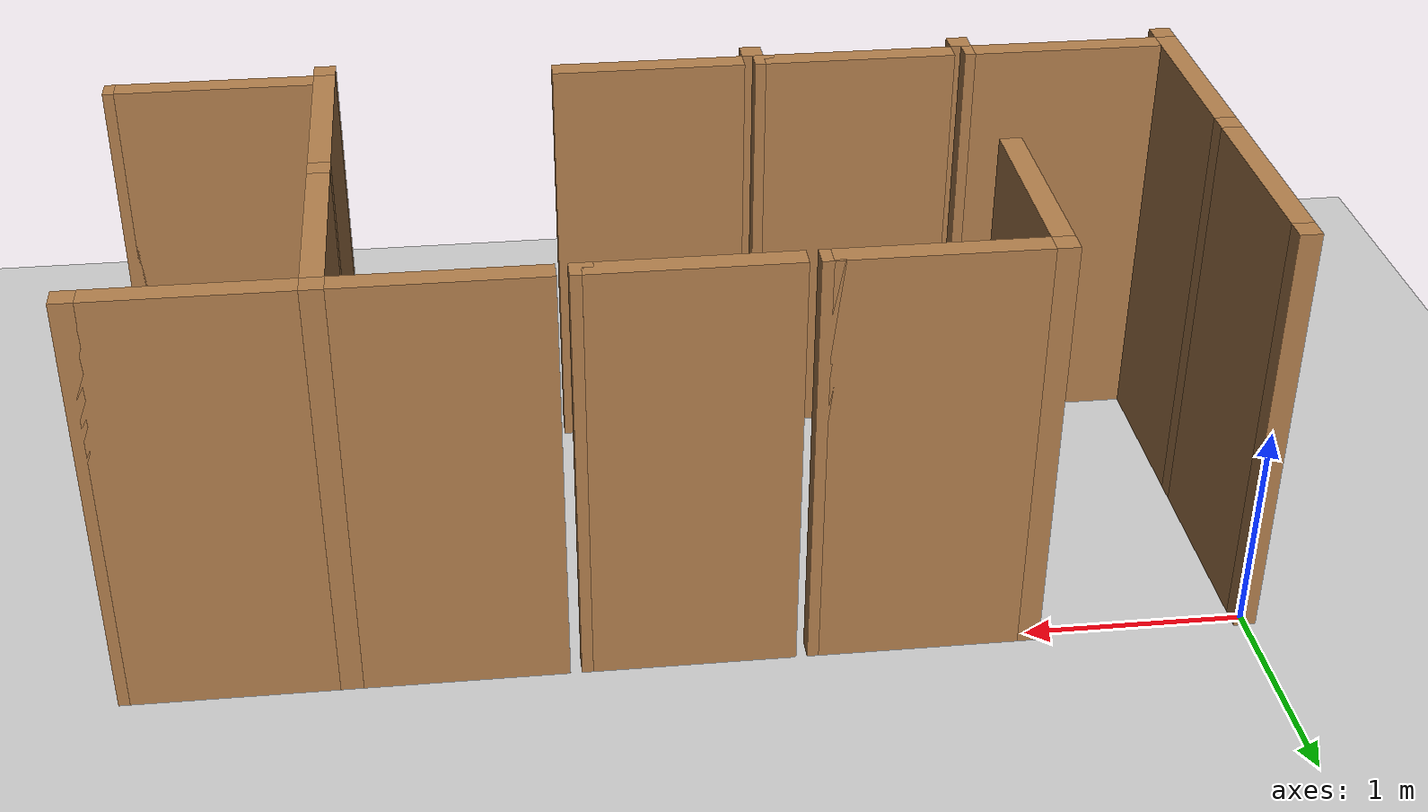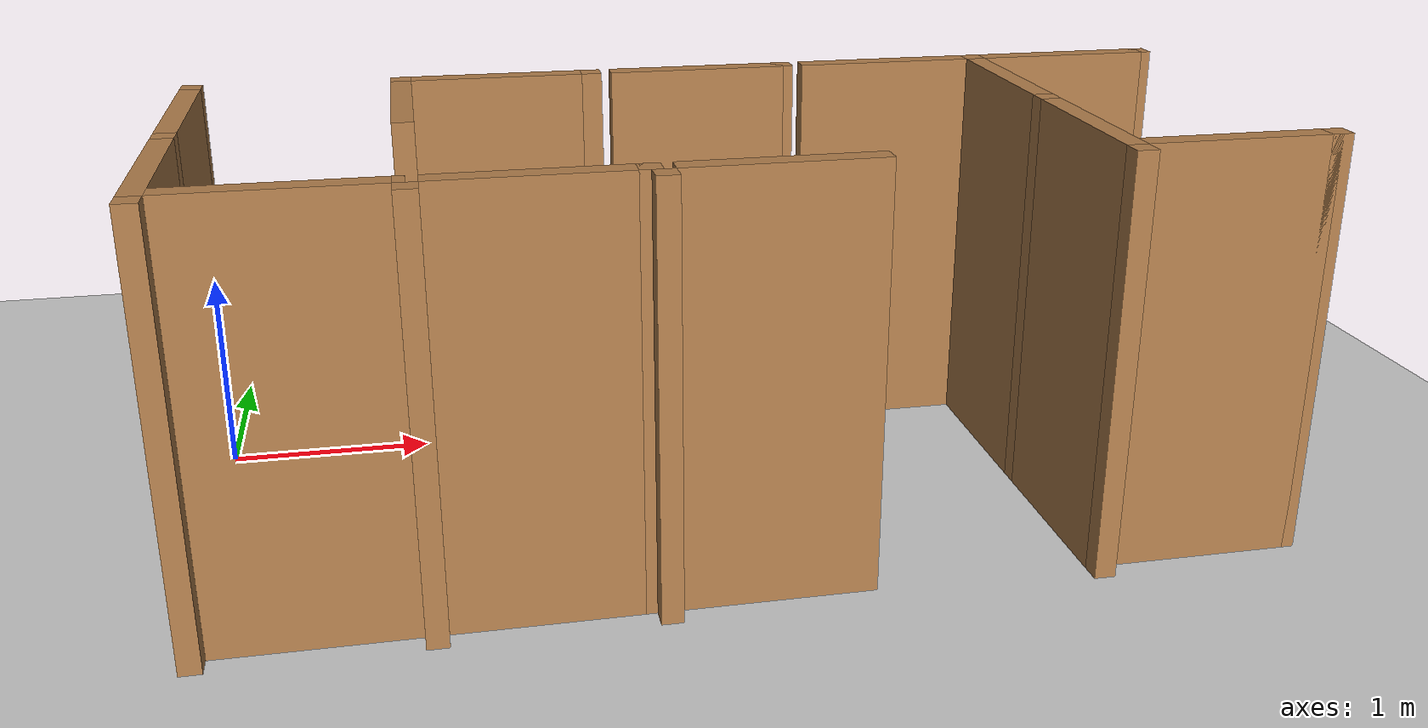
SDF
<sdf version="1.6">
 <world name="default">
  <include><uri>model://sun</uri></include>
  <model name="ground_plane">
   <static>true</static>
   <link name="link">
    <collision name="collision"><geometry><plane><size>12.0 12.0</size></plane></geometry></collision>
    <visual name="visual">
     <cast_shadows>false</cast_shadows>
     <geometry><plane><size>12.0 12.0</size></plane></geometry>
     <material>
      <script><uri>file://media/materials/scripts/gazebo.material</uri><name>Gazebo/Grey</name></script>
     </material>
    </visual>
   </link>
   <pose>6.0 -6.0 0 0 0 0</pose>
  </model>
  <model name="vwall_0_0">
   <pose>0.0 -0.5 1.0 0 0 0</pose>
   <link name="link">
    <collision name="collision"><geometry><box><size>0.1 0.9 2</size></box></geometry></collision>
    <visual name="visual">
     <geometry><box><size>0.1 0.9 2</size></box></geometry>
     <material>
      <script><uri>file://media/materials/scripts/gazebo.material</uri><name>Gazebo/Wood</name></script>
     </material>
    </visual>
   </link>
  </model>
  <model name="joint_0.0_0.0">
   <pose>0.0 0.0 1.0 0 0 0</pose>
   <link name="link">
    <collision name="collision"><geometry><box><size>0.1 0.1 2</size></box></geometry></collision>
    <visual name="visual">
     <geometry><box><size>0.1 0.1 2</size></box></geometry>
     <material>
      <script><uri>file://media/materials/scripts/gazebo.material</uri><name>Gazebo/Wood</name></script>
     </material>
    </visual>
   </link>
  </model>
  <model name="vwall_0_1">
   <pose>1.0 -0.5 1.0 0 0 0</pose>
   <link name="link">
    <collision name="collision"><geometry><box><size>0.1 0.9 2</size></box></geometry></collision>
    <visual name="visual">
     <geometry><box><size>0.1 0.9 2</size></box></geometry>
     <material>
      <script><uri>file://media/materials/scripts/gazebo.material</uri><name>Gazebo/Wood</name></script>
     </material>
    </visual>
   </link>
  </model>
  <model name="joint_1.0_0.0">
   <pose>1.0 0.0 1.0 0 0 0</pose>
   <link name="link">
    <collision name="collision"><geometry><box><size>0.1 0.1 2</size></box></geometry></collision>
    <visual name="visual">
     <geometry><box><size>0.1 0.1 2</size></box></geometry>
     <material>
      <script><uri>file://media/materials/scripts/gazebo.material</uri><name>Gazebo/Wood</name></script>
     </material>
    </visual>
   </link>
  </model>
  <model name="vwall_0_4">
   <pose>4.0 -0.5 1.0 0 0 0</pose>
   <link name="link">
    <collision name="collision"><geometry><box><size>0.1 0.9 2</size></box></geometry></collision>
    <visual name="visual">
     <geometry><box><size>0.1 0.9 2</size></box></geometry>
     <material>
      <script><uri>file://media/materials/scripts/gazebo.material</uri><name>Gazebo/Wood</name></script>
     </material>
    </visual>
   </link>
  </model>
  <model name="joint_4.0_0.0">
   <pose>4.0 0.0 1.0 0 0 0</pose>
   <link name="link">
    <collision name="collision"><geometry><box><size>0.1 0.1 2</size></box></geometry></collision>
    <visual name="visual">
     <geometry><box><size>0.1 0.1 2</size></box></geometry>
     <material>
      <script><uri>file://media/materials/scripts/gazebo.material</uri><name>Gazebo/Wood</name></script>
     </material>
    </visual>
   </link>
  </model>
  <model name="vwall_1_0">
   <pose>0.0 -1.5 1.0 0 0 0</pose>
   <link name="link">
    <collision name="collision"><geometry><box><size>0.1 0.9 2</size></box></geometry></collision>
    <visual name="visual">
     <geometry><box><size>0.1 0.9 2</size></box></geometry>
     <material>
      <script><uri>file://media/materials/scripts/gazebo.material</uri><name>Gazebo/Wood</name></script>
     </material>
    </visual>
   </link>
  </model>
  <model name="joint_0.0_-1.0">
   <pose>0.0 -1.0 1.0 0 0 0</pose>
   <link name="link">
    <collision name="collision"><geometry><box><size>0.1 0.1 2</size></box></geometry></collision>
    <visual name="visual">
     <geometry><box><size>0.1 0.1 2</size></box></geometry>
     <material>
      <script><uri>file://media/materials/scripts/gazebo.material</uri><name>Gazebo/Wood</name></script>
     </material>
    </visual>
   </link>
  </model>
  <model name="vwall_1_4">
   <pose>4.0 -1.5 1.0 0 0 0</pose>
   <link name="link">
    <collision name="collision"><geometry><box><size>0.1 0.9 2</size></box></geometry></collision>
    <visual name="visual">
     <geometry><box><size>0.1 0.9 2</size></box></geometry>
     <material>
      <script><uri>file://media/materials/scripts/gazebo.material</uri><name>Gazebo/Wood</name></script>
     </material>
    </visual>
   </link>
  </model>
  <model name="joint_4.0_-1.0">
   <pose>4.0 -1.0 1.0 0 0 0</pose>
   <link name="link">
    <collision name="collision"><geometry><box><size>0.1 0.1 2</size></box></geometry></collision>
    <visual name="visual">
     <geometry><box><size>0.1 0.1 2</size></box></geometry>
     <material>
      <script><uri>file://media/materials/scripts/gazebo.material</uri><name>Gazebo/Wood</name></script>
     </material>
    </visual>
   </link>
  </model>
  <model name="joint_0.0_-2.0">
   <pose>0.0 -2.0 1.0 0 0 0</pose>
   <link name="link">
    <collision name="collision"><geometry><box><size>0.1 0.1 2</size></box></geometry></collision>
    <visual name="visual">
     <geometry><box><size>0.1 0.1 2</size></box></geometry>
     <material>
      <script><uri>file://media/materials/scripts/gazebo.material</uri><name>Gazebo/Wood</name></script>
     </material>
    </visual>
   </link>
  </model>
  <model name="joint_1.0_-2.0">
   <pose>1.0 -2.0 1.0 0 0 0</pose>
   <link name="link">
    <collision name="collision"><geometry><box><size>0.1 0.1 2</size></box></geometry></collision>
    <visual name="visual">
     <geometry><box><size>0.1 0.1 2</size></box></geometry>
     <material>
      <script><uri>file://media/materials/scripts/gazebo.material</uri><name>Gazebo/Wood</name></script>
     </material>
    </visual>
   </link>
  </model>
  <model name="joint_2.0_-2.0">
   <pose>2.0 -2.0 1.0 0 0 0</pose>
   <link name="link">
    <collision name="collision"><geometry><box><size>0.1 0.1 2</size></box></geometry></collision>
    <visual name="visual">
     <geometry><box><size>0.1 0.1 2</size></box></geometry>
     <material>
      <script><uri>file://media/materials/scripts/gazebo.material</uri><name>Gazebo/Wood</name></script>
     </material>
    </visual>
   </link>
  </model>
  <model name="joint_4.0_-2.0">
   <pose>4.0 -2.0 1.0 0 0 0</pose>
   <link name="link">
    <collision name="collision"><geometry><box><size>0.1 0.1 2</size></box></geometry></collision>
    <visual name="visual">
     <geometry><box><size>0.1 0.1 2</size></box></geometry>
     <material>
      <script><uri>file://media/materials/scripts/gazebo.material</uri><name>Gazebo/Wood</name></script>
     </material>
    </visual>
   </link>
  </model>
  <model name="hwall_0_1">
   <pose>1.5 0.0 1.0 0 0 0</pose>
   <link name="link">
    <collision name="collision"><geometry><box><size>0.9 0.1 2</size></box></geometry></collision>
    <visual name="visual">
     <geometry><box><size>0.9 0.1 2</size></box></geometry>
     <material>
      <script><uri>file://media/materials/scripts/gazebo.material</uri><name>Gazebo/Wood</name></script>
     </material>
    </visual>
   </link>
  </model>
  <model name="joint_1.95_0.0">
   <pose>1.95 0.0 1.0 0 0 0</pose>
   <link name="link">
    <collision name="collision"><geometry><box><size>0.1 0.1 2</size></box></geometry></collision>
    <visual name="visual">
     <geometry><box><size>0.1 0.1 2</size></box></geometry>
     <material>
      <script><uri>file://media/materials/scripts/gazebo.material</uri><name>Gazebo/Wood</name></script>
     </material>
    </visual>
   </link>
  </model>
  <model name="hwall_0_2">
   <pose>2.5 0.0 1.0 0 0 0</pose>
   <link name="link">
    <collision name="collision"><geometry><box><size>0.9 0.1 2</size></box></geometry></collision>
    <visual name="visual">
     <geometry><box><size>0.9 0.1 2</size></box></geometry>
     <material>
      <script><uri>file://media/materials/scripts/gazebo.material</uri><name>Gazebo/Wood</name></script>
     </material>
    </visual>
   </link>
  </model>
  <model name="joint_2.95_0.0">
   <pose>2.95 0.0 1.0 0 0 0</pose>
   <link name="link">
    <collision name="collision"><geometry><box><size>0.1 0.1 2</size></box></geometry></collision>
    <visual name="visual">
     <geometry><box><size>0.1 0.1 2</size></box></geometry>
     <material>
      <script><uri>file://media/materials/scripts/gazebo.material</uri><name>Gazebo/Wood</name></script>
     </material>
    </visual>
   </link>
  </model>
  <model name="hwall_0_3">
   <pose>3.5 0.0 1.0 0 0 0</pose>
   <link name="link">
    <collision name="collision"><geometry><box><size>0.9 0.1 2</size></box></geometry></collision>
    <visual name="visual">
     <geometry><box><size>0.9 0.1 2</size></box></geometry>
     <material>
      <script><uri>file://media/materials/scripts/gazebo.material</uri><name>Gazebo/Wood</name></script>
     </material>
    </visual>
   </link>
  </model>
  <model name="hwall_0_4">
   <pose>4.5 0.0 1.0 0 0 0</pose>
   <link name="link">
    <collision name="collision"><geometry><box><size>0.9 0.1 2</size></box></geometry></collision>
    <visual name="visual">
     <geometry><box><size>0.9 0.1 2</size></box></geometry>
     <material>
      <script><uri>file://media/materials/scripts/gazebo.material</uri><name>Gazebo/Wood</name></script>
     </material>
    </visual>
   </link>
  </model>
  <model name="joint_4.95_0.0">
   <pose>4.95 0.0 1.0 0 0 0</pose>
   <link name="link">
    <collision name="collision"><geometry><box><size>0.1 0.1 2</size></box></geometry></collision>
    <visual name="visual">
     <geometry><box><size>0.1 0.1 2</size></box></geometry>
     <material>
      <script><uri>file://media/materials/scripts/gazebo.material</uri><name>Gazebo/Wood</name></script>
     </material>
    </visual>
   </link>
  </model>
  <model name="hwall_1_0">
   <pose>0.5 -1.9 1.0 0 0 0</pose>
   <link name="link">
    <collision name="collision"><geometry><box><size>0.9 0.1 2</size></box></geometry></collision>
    <visual name="visual">
     <geometry><box><size>0.9 0.1 2</size></box></geometry>
     <material>
      <script><uri>file://media/materials/scripts/gazebo.material</uri><name>Gazebo/Wood</name></script>
     </material>
    </visual>
   </link>
  </model>
  <model name="joint_0.95_-1.9">
   <pose>0.95 -1.9 1.0 0 0 0</pose>
   <link name="link">
    <collision name="collision"><geometry><box><size>0.1 0.1 2</size></box></geometry></collision>
    <visual name="visual">
     <geometry><box><size>0.1 0.1 2</size></box></geometry>
     <material>
      <script><uri>file://media/materials/scripts/gazebo.material</uri><name>Gazebo/Wood</name></script>
     </material>
    </visual>
   </link>
  </model>
  <model name="hwall_1_1">
   <pose>1.5 -1.9 1.0 0 0 0</pose>
   <link name="link">
    <collision name="collision"><geometry><box><size>0.9 0.1 2</size></box></geometry></collision>
    <visual name="visual">
     <geometry><box><size>0.9 0.1 2</size></box></geometry>
     <material>
      <script><uri>file://media/materials/scripts/gazebo.material</uri><name>Gazebo/Wood</name></script>
     </material>
    </visual>
   </link>
  </model>
  <model name="joint_1.95_-1.9">
   <pose>1.95 -1.9 1.0 0 0 0</pose>
   <link name="link">
    <collision name="collision"><geometry><box><size>0.1 0.1 2</size></box></geometry></collision>
    <visual name="visual">
     <geometry><box><size>0.1 0.1 2</size></box></geometry>
     <material>
      <script><uri>file://media/materials/scripts/gazebo.material</uri><name>Gazebo/Wood</name></script>
     </material>
    </visual>
   </link>
  </model>
  <model name="hwall_1_2">
   <pose>2.5 -1.9 1.0 0 0 0</pose>
   <link name="link">
    <collision name="collision"><geometry><box><size>0.9 0.1 2</size></box></geometry></collision>
    <visual name="visual">
     <geometry><box><size>0.9 0.1 2</size></box></geometry>
     <material>
      <script><uri>file://media/materials/scripts/gazebo.material</uri><name>Gazebo/Wood</name></script>
     </material>
    </visual>
   </link>
  </model>
  <model name="hwall_1_4">
   <pose>4.5 -1.9 1.0 0 0 0</pose>
   <link name="link">
    <collision name="collision"><geometry><box><size>0.9 0.1 2</size></box></geometry></collision>
    <visual name="visual">
     <geometry><box><size>0.9 0.1 2</size></box></geometry>
     <material>
      <script><uri>file://media/materials/scripts/gazebo.material</uri><name>Gazebo/Wood</name></script>
     </material>
    </visual>
   </link>
  </model>
  <model name="joint_4.95_-1.9">
   <pose>4.95 -1.9 1.0 0 0 0</pose>
   <link name="link">
    <collision name="collision"><geometry><box><size>0.1 0.1 2</size></box></geometry></collision>
    <visual name="visual">
     <geometry><box><size>0.1 0.1 2</size></box></geometry>
     <material>
      <script><uri>file://media/materials/scripts/gazebo.material</uri><name>Gazebo/Wood</name></script>
     </material>
    </visual>
   </link>
  </model>
 </world>
</sdf>
